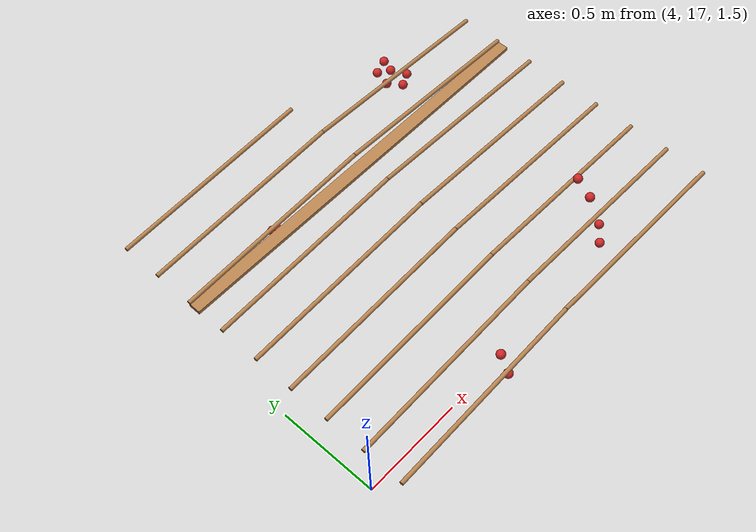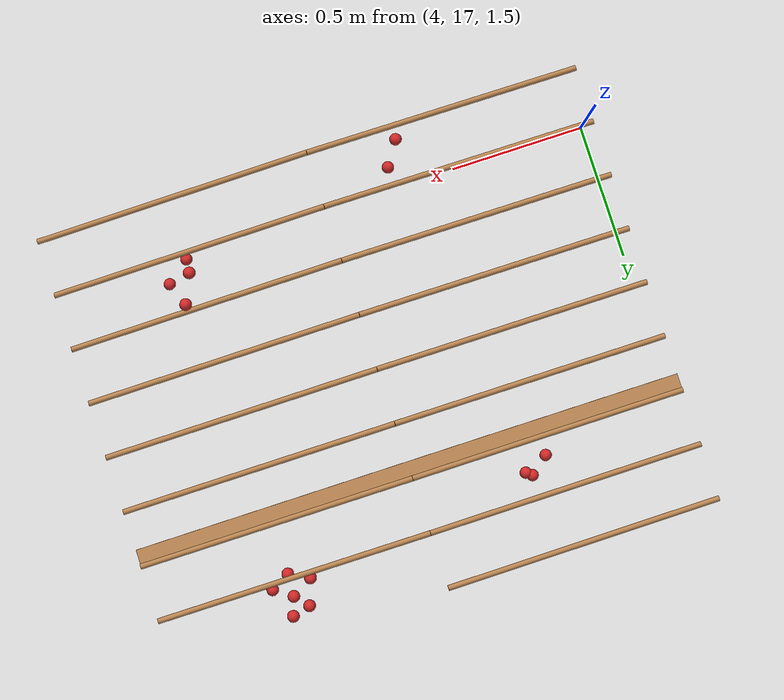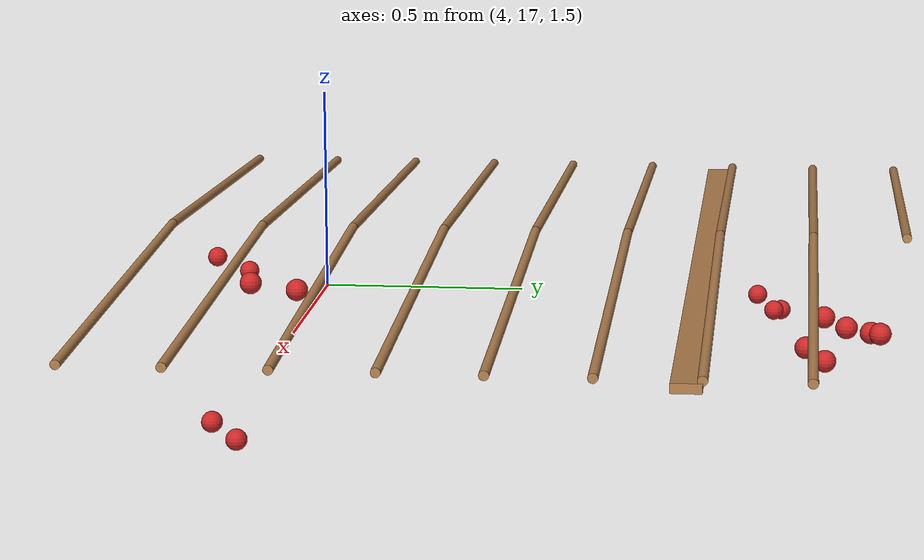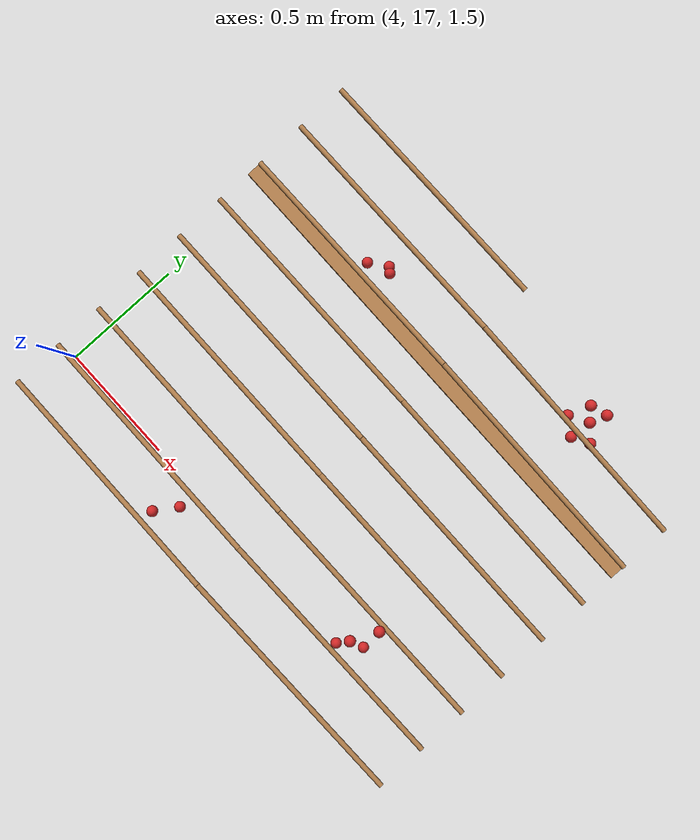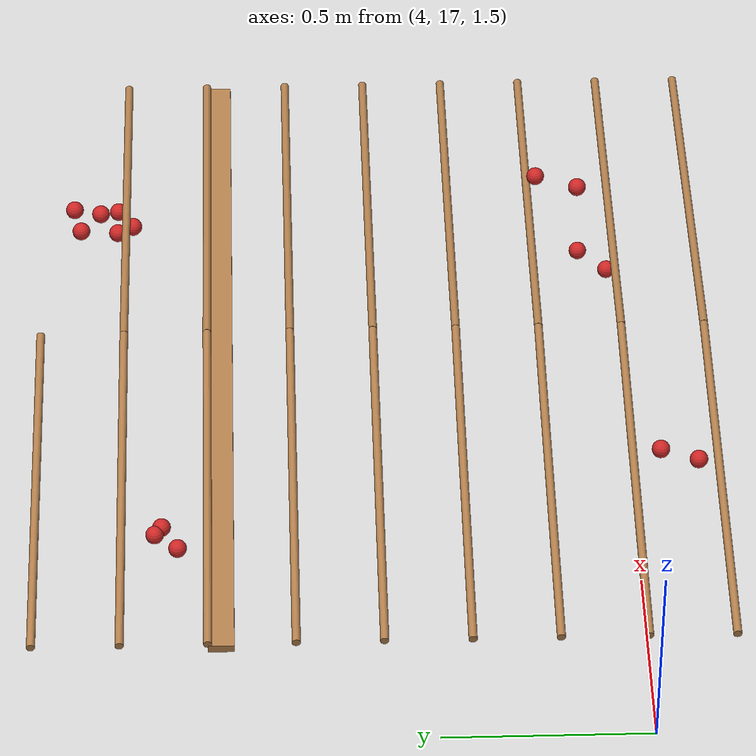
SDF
<sdf version="1.4">
 <model name="pergola">
  <link name="beam_31">
   <pose>5.0 18.0 1.81 0 0 0</pose>
   <collision name="collision"><geometry><box><size>2.0 0.06 0.02</size></box></geometry></collision>
   <visual name="visual">
    <geometry><box><size>2.0 0.06 0.02</size></box></geometry>
    <material><script><name>Gazebo/Wood</name></script></material>
   </visual>
   <inertial>
    <mass>5</mass>
    <inertia>
     <ixx>0.0016666666666666668</ixx>
     <ixy>0.0</ixy>
     <ixz>0.0</ixz>
     <iyy>1.6681666666666664</iyy>
     <iyz>0.0</iyz>
     <izz>1.6668333333333332</izz>
    </inertia>
   </inertial>
  </link>
  <link name="vine_568">
   <pose>4.5 16.830000000000002 1.85 0 1.5208379310729538 0</pose>
   <collision name="collision">
    <geometry><cylinder><radius>0.01</radius><length>1.0012492197250393</length></cylinder></geometry>
   </collision>
   <visual name="visual">
    <geometry><cylinder><radius>0.01</radius><length>1.0012492197250393</length></cylinder></geometry>
    <material><script><name>Gazebo/WoodFloor</name></script></material>
   </visual>
   <inertial>
    <mass>5</mass>
    <inertia>
     <ixx>0.41783333333333345</ixx>
     <ixy>0.0</ixy>
     <ixz>0.0</ixz>
     <iyy>0.41783333333333345</iyy>
     <iyz>0.0</iyz>
     <izz>0.00025</izz>
    </inertia>
   </inertial>
  </link>
  <link name="vine_569">
   <pose>5.5 16.830000000000002 1.85 0 -1.5208379310729538 0</pose>
   <collision name="collision">
    <geometry><cylinder><radius>0.01</radius><length>1.0012492197250393</length></cylinder></geometry>
   </collision>
   <visual name="visual">
    <geometry><cylinder><radius>0.01</radius><length>1.0012492197250393</length></cylinder></geometry>
    <material><script><name>Gazebo/WoodFloor</name></script></material>
   </visual>
   <inertial>
    <mass>5</mass>
    <inertia>
     <ixx>0.41783333333333345</ixx>
     <ixy>0.0</ixy>
     <ixz>0.0</ixz>
     <iyy>0.41783333333333345</iyy>
     <iyz>0.0</iyz>
     <izz>0.00025</izz>
    </inertia>
   </inertial>
  </link>
  <link name="vine_570">
   <pose>4.5 17.03 1.85 0 1.5208379310729538 0</pose>
   <collision name="collision">
    <geometry><cylinder><radius>0.01</radius><length>1.0012492197250393</length></cylinder></geometry>
   </collision>
   <visual name="visual">
    <geometry><cylinder><radius>0.01</radius><length>1.0012492197250393</length></cylinder></geometry>
    <material><script><name>Gazebo/WoodFloor</name></script></material>
   </visual>
   <inertial>
    <mass>5</mass>
    <inertia>
     <ixx>0.41783333333333345</ixx>
     <ixy>0.0</ixy>
     <ixz>0.0</ixz>
     <iyy>0.41783333333333345</iyy>
     <iyz>0.0</iyz>
     <izz>0.00025</izz>
    </inertia>
   </inertial>
  </link>
  <link name="vine_571">
   <pose>5.5 17.03 1.85 0 -1.5208379310729538 0</pose>
   <collision name="collision">
    <geometry><cylinder><radius>0.01</radius><length>1.0012492197250393</length></cylinder></geometry>
   </collision>
   <visual name="visual">
    <geometry><cylinder><radius>0.01</radius><length>1.0012492197250393</length></cylinder></geometry>
    <material><script><name>Gazebo/WoodFloor</name></script></material>
   </visual>
   <inertial>
    <mass>5</mass>
    <inertia>
     <ixx>0.41783333333333345</ixx>
     <ixy>0.0</ixy>
     <ixz>0.0</ixz>
     <iyy>0.41783333333333345</iyy>
     <iyz>0.0</iyz>
     <izz>0.00025</izz>
    </inertia>
   </inertial>
  </link>
  <link name="vine_572">
   <pose>4.5 17.23 1.85 0 1.5208379310729538 0</pose>
   <collision name="collision">
    <geometry><cylinder><radius>0.01</radius><length>1.0012492197250393</length></cylinder></geometry>
   </collision>
   <visual name="visual">
    <geometry><cylinder><radius>0.01</radius><length>1.0012492197250393</length></cylinder></geometry>
    <material><script><name>Gazebo/WoodFloor</name></script></material>
   </visual>
   <inertial>
    <mass>5</mass>
    <inertia>
     <ixx>0.41783333333333345</ixx>
     <ixy>0.0</ixy>
     <ixz>0.0</ixz>
     <iyy>0.41783333333333345</iyy>
     <iyz>0.0</iyz>
     <izz>0.00025</izz>
    </inertia>
   </inertial>
  </link>
  <link name="vine_573">
   <pose>5.5 17.23 1.85 0 -1.5208379310729538 0</pose>
   <collision name="collision">
    <geometry><cylinder><radius>0.01</radius><length>1.0012492197250393</length></cylinder></geometry>
   </collision>
   <visual name="visual">
    <geometry><cylinder><radius>0.01</radius><length>1.0012492197250393</length></cylinder></geometry>
    <material><script><name>Gazebo/WoodFloor</name></script></material>
   </visual>
   <inertial>
    <mass>5</mass>
    <inertia>
     <ixx>0.41783333333333345</ixx>
     <ixy>0.0</ixy>
     <ixz>0.0</ixz>
     <iyy>0.41783333333333345</iyy>
     <iyz>0.0</iyz>
     <izz>0.00025</izz>
    </inertia>
   </inertial>
  </link>
  <link name="vine_574">
   <pose>4.5 17.430000000000003 1.85 0 1.5208379310729538 0</pose>
   <collision name="collision">
    <geometry><cylinder><radius>0.01</radius><length>1.0012492197250393</length></cylinder></geometry>
   </collision>
   <visual name="visual">
    <geometry><cylinder><radius>0.01</radius><length>1.0012492197250393</length></cylinder></geometry>
    <material><script><name>Gazebo/WoodFloor</name></script></material>
   </visual>
   <inertial>
    <mass>5</mass>
    <inertia>
     <ixx>0.41783333333333345</ixx>
     <ixy>0.0</ixy>
     <ixz>0.0</ixz>
     <iyy>0.41783333333333345</iyy>
     <iyz>0.0</iyz>
     <izz>0.00025</izz>
    </inertia>
   </inertial>
  </link>
  <link name="vine_575">
   <pose>5.5 17.430000000000003 1.85 0 -1.5208379310729538 0</pose>
   <collision name="collision">
    <geometry><cylinder><radius>0.01</radius><length>1.0012492197250393</length></cylinder></geometry>
   </collision>
   <visual name="visual">
    <geometry><cylinder><radius>0.01</radius><length>1.0012492197250393</length></cylinder></geometry>
    <material><script><name>Gazebo/WoodFloor</name></script></material>
   </visual>
   <inertial>
    <mass>5</mass>
    <inertia>
     <ixx>0.41783333333333345</ixx>
     <ixy>0.0</ixy>
     <ixz>0.0</ixz>
     <iyy>0.41783333333333345</iyy>
     <iyz>0.0</iyz>
     <izz>0.00025</izz>
    </inertia>
   </inertial>
  </link>
  <link name="vine_576">
   <pose>4.5 17.630000000000003 1.85 0 1.5208379310729538 0</pose>
   <collision name="collision">
    <geometry><cylinder><radius>0.01</radius><length>1.0012492197250393</length></cylinder></geometry>
   </collision>
   <visual name="visual">
    <geometry><cylinder><radius>0.01</radius><length>1.0012492197250393</length></cylinder></geometry>
    <material><script><name>Gazebo/WoodFloor</name></script></material>
   </visual>
   <inertial>
    <mass>5</mass>
    <inertia>
     <ixx>0.41783333333333345</ixx>
     <ixy>0.0</ixy>
     <ixz>0.0</ixz>
     <iyy>0.41783333333333345</iyy>
     <iyz>0.0</iyz>
     <izz>0.00025</izz>
    </inertia>
   </inertial>
  </link>
  <link name="vine_577">
   <pose>5.5 17.630000000000003 1.85 0 -1.5208379310729538 0</pose>
   <collision name="collision">
    <geometry><cylinder><radius>0.01</radius><length>1.0012492197250393</length></cylinder></geometry>
   </collision>
   <visual name="visual">
    <geometry><cylinder><radius>0.01</radius><length>1.0012492197250393</length></cylinder></geometry>
    <material><script><name>Gazebo/WoodFloor</name></script></material>
   </visual>
   <inertial>
    <mass>5</mass>
    <inertia>
     <ixx>0.41783333333333345</ixx>
     <ixy>0.0</ixy>
     <ixz>0.0</ixz>
     <iyy>0.41783333333333345</iyy>
     <iyz>0.0</iyz>
     <izz>0.00025</izz>
    </inertia>
   </inertial>
  </link>
  <link name="vine_578">
   <pose>4.5 17.830000000000002 1.85 0 1.5208379310729538 0</pose>
   <collision name="collision">
    <geometry><cylinder><radius>0.01</radius><length>1.0012492197250393</length></cylinder></geometry>
   </collision>
   <visual name="visual">
    <geometry><cylinder><radius>0.01</radius><length>1.0012492197250393</length></cylinder></geometry>
    <material><script><name>Gazebo/WoodFloor</name></script></material>
   </visual>
   <inertial>
    <mass>5</mass>
    <inertia>
     <ixx>0.41783333333333345</ixx>
     <ixy>0.0</ixy>
     <ixz>0.0</ixz>
     <iyy>0.41783333333333345</iyy>
     <iyz>0.0</iyz>
     <izz>0.00025</izz>
    </inertia>
   </inertial>
  </link>
  <link name="vine_579">
   <pose>5.5 17.830000000000002 1.85 0 -1.5208379310729538 0</pose>
   <collision name="collision">
    <geometry><cylinder><radius>0.01</radius><length>1.0012492197250393</length></cylinder></geometry>
   </collision>
   <visual name="visual">
    <geometry><cylinder><radius>0.01</radius><length>1.0012492197250393</length></cylinder></geometry>
    <material><script><name>Gazebo/WoodFloor</name></script></material>
   </visual>
   <inertial>
    <mass>5</mass>
    <inertia>
     <ixx>0.41783333333333345</ixx>
     <ixy>0.0</ixy>
     <ixz>0.0</ixz>
     <iyy>0.41783333333333345</iyy>
     <iyz>0.0</iyz>
     <izz>0.00025</izz>
    </inertia>
   </inertial>
  </link>
  <link name="vine_580">
   <pose>4.5 18.03 1.85 0 1.5208379310729538 0</pose>
   <collision name="collision">
    <geometry><cylinder><radius>0.01</radius><length>1.0012492197250393</length></cylinder></geometry>
   </collision>
   <visual name="visual">
    <geometry><cylinder><radius>0.01</radius><length>1.0012492197250393</length></cylinder></geometry>
    <material><script><name>Gazebo/WoodFloor</name></script></material>
   </visual>
   <inertial>
    <mass>5</mass>
    <inertia>
     <ixx>0.41783333333333345</ixx>
     <ixy>0.0</ixy>
     <ixz>0.0</ixz>
     <iyy>0.41783333333333345</iyy>
     <iyz>0.0</iyz>
     <izz>0.00025</izz>
    </inertia>
   </inertial>
  </link>
  <link name="vine_581">
   <pose>5.5 18.03 1.85 0 -1.5208379310729538 0</pose>
   <collision name="collision">
    <geometry><cylinder><radius>0.01</radius><length>1.0012492197250393</length></cylinder></geometry>
   </collision>
   <visual name="visual">
    <geometry><cylinder><radius>0.01</radius><length>1.0012492197250393</length></cylinder></geometry>
    <material><script><name>Gazebo/WoodFloor</name></script></material>
   </visual>
   <inertial>
    <mass>5</mass>
    <inertia>
     <ixx>0.41783333333333345</ixx>
     <ixy>0.0</ixy>
     <ixz>0.0</ixz>
     <iyy>0.41783333333333345</iyy>
     <iyz>0.0</iyz>
     <izz>0.00025</izz>
    </inertia>
   </inertial>
  </link>
  <link name="vine_582">
   <pose>4.5 18.23 1.85 0 1.5208379310729538 0</pose>
   <collision name="collision">
    <geometry><cylinder><radius>0.01</radius><length>1.0012492197250393</length></cylinder></geometry>
   </collision>
   <visual name="visual">
    <geometry><cylinder><radius>0.01</radius><length>1.0012492197250393</length></cylinder></geometry>
    <material><script><name>Gazebo/WoodFloor</name></script></material>
   </visual>
   <inertial>
    <mass>5</mass>
    <inertia>
     <ixx>0.41783333333333345</ixx>
     <ixy>0.0</ixy>
     <ixz>0.0</ixz>
     <iyy>0.41783333333333345</iyy>
     <iyz>0.0</iyz>
     <izz>0.00025</izz>
    </inertia>
   </inertial>
  </link>
  <link name="vine_583">
   <pose>5.5 18.23 1.85 0 -1.5208379310729538 0</pose>
   <collision name="collision">
    <geometry><cylinder><radius>0.01</radius><length>1.0012492197250393</length></cylinder></geometry>
   </collision>
   <visual name="visual">
    <geometry><cylinder><radius>0.01</radius><length>1.0012492197250393</length></cylinder></geometry>
    <material><script><name>Gazebo/WoodFloor</name></script></material>
   </visual>
   <inertial>
    <mass>5</mass>
    <inertia>
     <ixx>0.41783333333333345</ixx>
     <ixy>0.0</ixy>
     <ixz>0.0</ixz>
     <iyy>0.41783333333333345</iyy>
     <iyz>0.0</iyz>
     <izz>0.00025</izz>
    </inertia>
   </inertial>
  </link>
  <link name="vine_584">
   <pose>4.5 18.430000000000003 1.85 0 1.5208379310729538 0</pose>
   <collision name="collision">
    <geometry><cylinder><radius>0.01</radius><length>1.0012492197250393</length></cylinder></geometry>
   </collision>
   <visual name="visual">
    <geometry><cylinder><radius>0.01</radius><length>1.0012492197250393</length></cylinder></geometry>
    <material><script><name>Gazebo/WoodFloor</name></script></material>
   </visual>
   <inertial>
    <mass>5</mass>
    <inertia>
     <ixx>0.41783333333333345</ixx>
     <ixy>0.0</ixy>
     <ixz>0.0</ixz>
     <iyy>0.41783333333333345</iyy>
     <iyz>0.0</iyz>
     <izz>0.00025</izz>
    </inertia>
   </inertial>
  </link>
  <link name="fruit_89">
   <pose>5.448574640066781 18.25223843592399 1.8102316242801053 0 0 0</pose>
   <collision name="fruit_collision_89"><geometry><sphere><radius>0.022</radius></sphere></geometry></collision>
   <visual name="visual">
    <geometry><sphere><radius>0.022</radius></sphere></geometry>
    <material><script><name>Gazebo/Red</name></script></material>
   </visual>
   <inertial>
    <mass>0.05</mass>
    <inertia>
     <ixx>9.679999999999999e-06</ixx>
     <ixy>0.0</ixy>
     <ixz>0.0</ixz>
     <iyy>9.679999999999999e-06</iyy>
     <iyz>0.0</iyz>
     <izz>9.679999999999999e-06</izz>
    </inertia>
   </inertial>
   <sensor name="fruit_contact_89" type="contact">
    <contact><collision>fruit_collision_89</collision></contact>
   </sensor>
  </link>
  <link name="fruit_98">
   <pose>4.6798540032899565 16.859914718072933 1.7267065695609847 0 0 0</pose>
   <collision name="fruit_collision_98"><geometry><sphere><radius>0.022</radius></sphere></geometry></collision>
   <visual name="visual">
    <geometry><sphere><radius>0.022</radius></sphere></geometry>
    <material><script><name>Gazebo/Red</name></script></material>
   </visual>
   <inertial>
    <mass>0.05</mass>
    <inertia>
     <ixx>9.679999999999999e-06</ixx>
     <ixy>0.0</ixy>
     <ixz>0.0</ixz>
     <iyy>9.679999999999999e-06</iyy>
     <iyz>0.0</iyz>
     <izz>9.679999999999999e-06</izz>
    </inertia>
   </inertial>
   <sensor name="fruit_contact_98" type="contact">
    <contact><collision>fruit_collision_98</collision></contact>
   </sensor>
  </link>
  <link name="fruit_261">
   <pose>4.513807555322617 18.105918509340736 1.6253125268540616 0 0 0</pose>
   <collision name="fruit_collision_261"><geometry><sphere><radius>0.022</radius></sphere></geometry></collision>
   <visual name="visual">
    <geometry><sphere><radius>0.022</radius></sphere></geometry>
    <material><script><name>Gazebo/Red</name></script></material>
   </visual>
   <inertial>
    <mass>0.05</mass>
    <inertia>
     <ixx>9.679999999999999e-06</ixx>
     <ixy>0.0</ixy>
     <ixz>0.0</ixz>
     <iyy>9.679999999999999e-06</iyy>
     <iyz>0.0</iyz>
     <izz>9.679999999999999e-06</izz>
    </inertia>
   </inertial>
   <sensor name="fruit_contact_261" type="contact">
    <contact><collision>fruit_collision_261</collision></contact>
   </sensor>
  </link>
  <link name="fruit_271">
   <pose>5.520975959913639 17.105540414286185 1.8718312002117796 0 0 0</pose>
   <collision name="fruit_collision_271"><geometry><sphere><radius>0.022</radius></sphere></geometry></collision>
   <visual name="visual">
    <geometry><sphere><radius>0.022</radius></sphere></geometry>
    <material><script><name>Gazebo/Red</name></script></material>
   </visual>
   <inertial>
    <mass>0.05</mass>
    <inertia>
     <ixx>9.679999999999999e-06</ixx>
     <ixy>0.0</ixy>
     <ixz>0.0</ixz>
     <iyy>9.679999999999999e-06</iyy>
     <iyz>0.0</iyz>
     <izz>9.679999999999999e-06</izz>
    </inertia>
   </inertial>
   <sensor name="fruit_contact_271" type="contact">
    <contact><collision>fruit_collision_271</collision></contact>
   </sensor>
  </link>
  <link name="fruit_280">
   <pose>5.5226592425974665 18.21653474225458 1.7662852965895357 0 0 0</pose>
   <collision name="fruit_collision_280"><geometry><sphere><radius>0.022</radius></sphere></geometry></collision>
   <visual name="visual">
    <geometry><sphere><radius>0.022</radius></sphere></geometry>
    <material><script><name>Gazebo/Red</name></script></material>
   </visual>
   <inertial>
    <mass>0.05</mass>
    <inertia>
     <ixx>9.679999999999999e-06</ixx>
     <ixy>0.0</ixy>
     <ixz>0.0</ixz>
     <iyy>9.679999999999999e-06</iyy>
     <iyz>0.0</iyz>
     <izz>9.679999999999999e-06</izz>
    </inertia>
   </inertial>
   <sensor name="fruit_contact_280" type="contact">
    <contact><collision>fruit_collision_280</collision></contact>
   </sensor>
  </link>
  <link name="fruit_342">
   <pose>5.535918069401684 17.022378937253887 1.5844788736718591 0 0 0</pose>
   <collision name="fruit_collision_342"><geometry><sphere><radius>0.022</radius></sphere></geometry></collision>
   <visual name="visual">
    <geometry><sphere><radius>0.022</radius></sphere></geometry>
    <material><script><name>Gazebo/Red</name></script></material>
   </visual>
   <inertial>
    <mass>0.05</mass>
    <inertia>
     <ixx>9.679999999999999e-06</ixx>
     <ixy>0.0</ixy>
     <ixz>0.0</ixz>
     <iyy>9.679999999999999e-06</iyy>
     <iyz>0.0</iyz>
     <izz>9.679999999999999e-06</izz>
    </inertia>
   </inertial>
   <sensor name="fruit_contact_342" type="contact">
    <contact><collision>fruit_collision_342</collision></contact>
   </sensor>
  </link>
  <link name="fruit_406">
   <pose>5.5908820527120335 18.25422259421275 1.7578814985075724 0 0 0</pose>
   <collision name="fruit_collision_406"><geometry><sphere><radius>0.022</radius></sphere></geometry></collision>
   <visual name="visual">
    <geometry><sphere><radius>0.022</radius></sphere></geometry>
    <material><script><name>Gazebo/Red</name></script></material>
   </visual>
   <inertial>
    <mass>0.05</mass>
    <inertia>
     <ixx>9.679999999999999e-06</ixx>
     <ixy>0.0</ixy>
     <ixz>0.0</ixz>
     <iyy>9.679999999999999e-06</iyy>
     <iyz>0.0</iyz>
     <izz>9.679999999999999e-06</izz>
    </inertia>
   </inertial>
   <sensor name="fruit_contact_406" type="contact">
    <contact><collision>fruit_collision_406</collision></contact>
   </sensor>
  </link>
  <link name="fruit_476">
   <pose>4.580082968026059 18.161333666945374 1.6065339791796496 0 0 0</pose>
   <collision name="fruit_collision_476"><geometry><sphere><radius>0.022</radius></sphere></geometry></collision>
   <visual name="visual">
    <geometry><sphere><radius>0.022</radius></sphere></geometry>
    <material><script><name>Gazebo/Red</name></script></material>
   </visual>
   <inertial>
    <mass>0.05</mass>
    <inertia>
     <ixx>9.679999999999999e-06</ixx>
     <ixy>0.0</ixy>
     <ixz>0.0</ixz>
     <iyy>9.679999999999999e-06</iyy>
     <iyz>0.0</iyz>
     <izz>9.679999999999999e-06</izz>
    </inertia>
   </inertial>
   <sensor name="fruit_contact_476" type="contact">
    <contact><collision>fruit_collision_476</collision></contact>
   </sensor>
  </link>
  <link name="fruit_531">
   <pose>4.601107725947623 18.144899731583624 1.6101974878509433 0 0 0</pose>
   <collision name="fruit_collision_531"><geometry><sphere><radius>0.022</radius></sphere></geometry></collision>
   <visual name="visual">
    <geometry><sphere><radius>0.022</radius></sphere></geometry>
    <material><script><name>Gazebo/Red</name></script></material>
   </visual>
   <inertial>
    <mass>0.05</mass>
    <inertia>
     <ixx>9.679999999999999e-06</ixx>
     <ixy>0.0</ixy>
     <ixz>0.0</ixz>
     <iyy>9.679999999999999e-06</iyy>
     <iyz>0.0</iyz>
     <izz>9.679999999999999e-06</izz>
    </inertia>
   </inertial>
   <sensor name="fruit_contact_531" type="contact">
    <contact><collision>fruit_collision_531</collision></contact>
   </sensor>
  </link>
  <link name="fruit_586">
   <pose>5.566960204117458 17.207551648614643 1.8712137123303598 0 0 0</pose>
   <collision name="fruit_collision_586"><geometry><sphere><radius>0.022</radius></sphere></geometry></collision>
   <visual name="visual">
    <geometry><sphere><radius>0.022</radius></sphere></geometry>
    <material><script><name>Gazebo/Red</name></script></material>
   </visual>
   <inertial>
    <mass>0.05</mass>
    <inertia>
     <ixx>9.679999999999999e-06</ixx>
     <ixy>0.0</ixy>
     <ixz>0.0</ixz>
     <iyy>9.679999999999999e-06</iyy>
     <iyz>0.0</iyz>
     <izz>9.679999999999999e-06</izz>
    </inertia>
   </inertial>
   <sensor name="fruit_contact_586" type="contact">
    <contact><collision>fruit_collision_586</collision></contact>
   </sensor>
  </link>
  <link name="fruit_630">
   <pose>5.546784457052833 18.361672881764907 1.803952159172428 0 0 0</pose>
   <collision name="fruit_collision_630"><geometry><sphere><radius>0.022</radius></sphere></geometry></collision>
   <visual name="visual">
    <geometry><sphere><radius>0.022</radius></sphere></geometry>
    <material><script><name>Gazebo/Red</name></script></material>
   </visual>
   <inertial>
    <mass>0.05</mass>
    <inertia>
     <ixx>9.679999999999999e-06</ixx>
     <ixy>0.0</ixy>
     <ixz>0.0</ixz>
     <iyy>9.679999999999999e-06</iyy>
     <iyz>0.0</iyz>
     <izz>9.679999999999999e-06</izz>
    </inertia>
   </inertial>
   <sensor name="fruit_contact_630" type="contact">
    <contact><collision>fruit_collision_630</collision></contact>
   </sensor>
  </link>
  <link name="fruit_842">
   <pose>5.482286597103868 18.344905757765584 1.7890836014126834 0 0 0</pose>
   <collision name="fruit_collision_842"><geometry><sphere><radius>0.022</radius></sphere></geometry></collision>
   <visual name="visual">
    <geometry><sphere><radius>0.022</radius></sphere></geometry>
    <material><script><name>Gazebo/Red</name></script></material>
   </visual>
   <inertial>
    <mass>0.05</mass>
    <inertia>
     <ixx>9.679999999999999e-06</ixx>
     <ixy>0.0</ixy>
     <ixz>0.0</ixz>
     <iyy>9.679999999999999e-06</iyy>
     <iyz>0.0</iyz>
     <izz>9.679999999999999e-06</izz>
    </inertia>
   </inertial>
   <sensor name="fruit_contact_842" type="contact">
    <contact><collision>fruit_collision_842</collision></contact>
   </sensor>
  </link>
  <link name="fruit_861">
   <pose>5.523559174729606 18.295851060684658 1.8089649314064125 0 0 0</pose>
   <collision name="fruit_collision_861"><geometry><sphere><radius>0.022</radius></sphere></geometry></collision>
   <visual name="visual">
    <geometry><sphere><radius>0.022</radius></sphere></geometry>
    <material><script><name>Gazebo/Red</name></script></material>
   </visual>
   <inertial>
    <mass>0.05</mass>
    <inertia>
     <ixx>9.679999999999999e-06</ixx>
     <ixy>0.0</ixy>
     <ixz>0.0</ixz>
     <iyy>9.679999999999999e-06</iyy>
     <iyz>0.0</iyz>
     <izz>9.679999999999999e-06</izz>
    </inertia>
   </inertial>
   <sensor name="fruit_contact_861" type="contact">
    <contact><collision>fruit_collision_861</collision></contact>
   </sensor>
  </link>
  <link name="fruit_970">
   <pose>5.622082640753464 17.08970464668522 1.5745973191275544 0 0 0</pose>
   <collision name="fruit_collision_970"><geometry><sphere><radius>0.022</radius></sphere></geometry></collision>
   <visual name="visual">
    <geometry><sphere><radius>0.022</radius></sphere></geometry>
    <material><script><name>Gazebo/Red</name></script></material>
   </visual>
   <inertial>
    <mass>0.05</mass>
    <inertia>
     <ixx>9.679999999999999e-06</ixx>
     <ixy>0.0</ixy>
     <ixz>0.0</ixz>
     <iyy>9.679999999999999e-06</iyy>
     <iyz>0.0</iyz>
     <izz>9.679999999999999e-06</izz>
    </inertia>
   </inertial>
   <sensor name="fruit_contact_970" type="contact">
    <contact><collision>fruit_collision_970</collision></contact>
   </sensor>
  </link>
  <link name="fruit_981">
   <pose>4.736421764544956 16.945686165065005 1.7087838485873372 0 0 0</pose>
   <collision name="fruit_collision_981"><geometry><sphere><radius>0.022</radius></sphere></geometry></collision>
   <visual name="visual">
    <geometry><sphere><radius>0.022</radius></sphere></geometry>
    <material><script><name>Gazebo/Red</name></script></material>
   </visual>
   <inertial>
    <mass>0.05</mass>
    <inertia>
     <ixx>9.679999999999999e-06</ixx>
     <ixy>0.0</ixy>
     <ixz>0.0</ixz>
     <iyy>9.679999999999999e-06</iyy>
     <iyz>0.0</iyz>
     <izz>9.679999999999999e-06</izz>
    </inertia>
   </inertial>
   <sensor name="fruit_contact_981" type="contact">
    <contact><collision>fruit_collision_981</collision></contact>
   </sensor>
  </link>
 </model>
</sdf>
